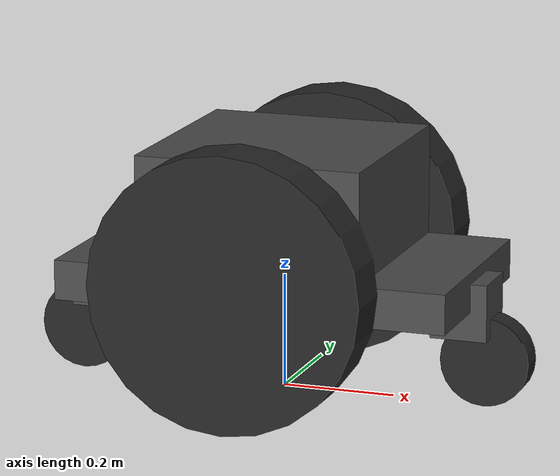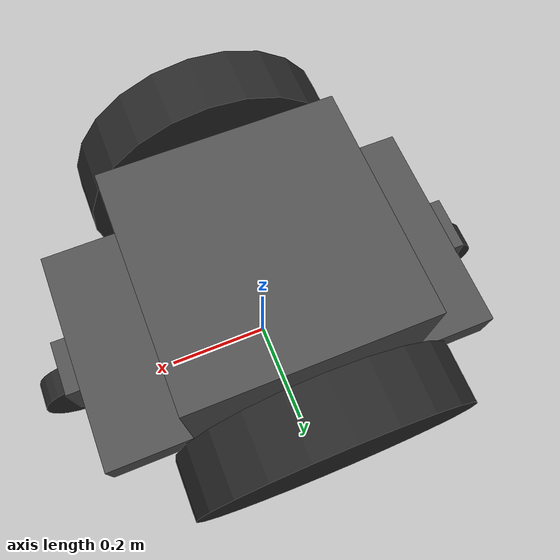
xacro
<?xml version="1.0"?>

<robot name="robot" xmlns:xacro="http://www.ros.org/wiki/xacro">

  <xacro:include filename="$(find iri_objects_description)/urdf/materials.xacro" />
  <xacro:include filename="$(find iri_objects_description)/urdf/diff_platform/include/platform.xacro" />

  <xacro:diff_platform name="robot"/>

</robot>

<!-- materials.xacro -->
<root xmlns:xacro="http://ros.org/wiki/xacro">
  <material name="black">
    <color rgba="0.15 0.15 0.15 1.0"/>
  </material>

  <material name="blue">
    <color rgba="0.17 0.3 0.56 1.0"/>
  </material>

  <material name="orange">
    <color rgba="0.93 0.44 0.01 1.0"/>
  </material>

  <material name="green">
    <color rgba="0.0 0.8 0.0 1.0"/>
  </material>

  <material name="grey">
    <color rgba="0.3 0.3 0.3 1.0"/>
  </material>

  <material name="grey2">
    <color rgba="0.7 0.7 0.7 1.0"/>
  </material>

  <material name="grey3">
    <color rgba="0.9 0.9 0.9 1.0"/>
  </material>

  <material name="red">
    <color rgba="0.8 0.0 0.0 1.0"/>
  </material>

  <material name="white">
    <color rgba="0.9 0.9 0.9 1.0"/>
  </material>
</root>

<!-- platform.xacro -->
<root xmlns:xacro="http://www.ros.org/wiki/xacro">

  <xacro:include filename="$(find iri_objects_description)/urdf/diff_platform/include/wheel.xacro" />
  <xacro:include filename="$(find iri_objects_description)/urdf/diff_platform/include/caster.xacro" />

  <xacro:macro name="diff_platform" params="name">
    <link name="base_footprint">
      <inertial>
        <mass value="1" />
        <origin xyz="0.0 0 0.0" />
        <inertia
          ixx="0.001" ixy="0.0" ixz="0.0"
          iyy="0.001" iyz="0.0"
          izz="0.001" />
      </inertial>
    </link>

    <link name="base_link">
      <visual>
        <origin xyz="0 0 0.1" rpy="0 0 0"/>
        <geometry>
          <box size="0.4 0.4 0.2"/>
        </geometry>
        <material name="grey"/>
      </visual>
      <inertial>
        <mass value="80" />
        <origin xyz="0 0 0.3" />
        <inertia
          ixx="24.0" ixy="0.0" ixz="0.0"
          iyy="24.0" iyz="0.0"
          izz="8.0" />
      </inertial>
    </link>

    <joint name="base_footprint2base_link" type="fixed">
      <parent link="base_footprint"/>
      <child link="base_link"/>
      <origin rpy="0 0 0" xyz="0 0 0.24"/>
      <axis xyz="0 0 1"/>
    </joint>

    <!-- left wheel -->
    <xacro:wheel prefix="left" parent="base_link" visual_angle="3.14">
      <origin xyz="0 0.2725 0.0" rpy="0 0 0" />
    </xacro:wheel>

    <!-- right wheel -->
    <xacro:wheel prefix="right" parent="base_link" visual_angle="0.0">
      <origin xyz="0 -0.2725 0.0" rpy="0 0 0" />
    </xacro:wheel>

    <!-- caster support -->
    <link name="caster_support">
      <inertial>
        <origin xyz="0 0 0" rpy="0 0 0"/>
        <mass value="1"/>
        <inertia
          ixx="0.001" ixy="0.0" ixz="0.0"
          iyy="0.001" iyz="0.0"
          izz="0.001"/>
      </inertial>
      <visual>
       <origin xyz="0 0 -0.035" rpy="0 0 0" />
       <geometry>
         <box size="0.7 0.4 0.07"/>
       </geometry>
       <material name="grey"/>
      </visual>
    </link>

    <joint name="base_link2caster_support" type="fixed">
      <parent link="base_link"/>
      <child link="caster_support"/>
      <origin rpy="0 0 0" xyz="0 0 0.005"/>
      <axis xyz="0 0 1"/>
    </joint>

    <!-- front caster set -->
    <xacro:caster prefix="front" parent="caster_support">
      <origin xyz="0.3292 0 -0.07" rpy="0 0 3.14159" />
    </xacro:caster>

    <!-- rear caster set -->
    <xacro:caster prefix="rear" parent="caster_support">
      <origin xyz="-0.3292 0 -0.07" rpy="0 0 0" />
    </xacro:caster>

    <gazebo>
      <plugin name="gazebo_ros_control" filename="libgazebo_ros_control.so">
        <robotNamespace>/${name}</robotNamespace>
        <controlPeriod>0.0078</controlPeriod>
      </plugin>
    </gazebo>

    <gazebo>
      <plugin name="differential_drive_controller" filename="libgazebo_ros_diff_drive.so">
        <rosDebugLevel>Debug</rosDebugLevel>
        <robotNamespace>${name}</robotNamespace>
        <publishTf>1</publishTf>
        <publishWheelTF>false</publishWheelTF>
        <publishWheelJointState>false</publishWheelJointState>
        <alwaysOn>true</alwaysOn>
        <updateRate>10</updateRate>
        <leftJoint>base_link_right_wheel_joint</leftJoint>
        <rightJoint>base_link_left_wheel_joint</rightJoint>
        <wheelSeparation>0.545</wheelSeparation>
        <wheelDiameter>0.48</wheelDiameter>
        <wheelTorque>100</wheelTorque>
        <wheelAcceleration>0.0</wheelAcceleration>
        <commandTopic>cmd_vel</commandTopic>
        <odometryTopic>odom</odometryTopic>
        <odometryFrame>/${name}/odom</odometryFrame>
        <odometrySource>world</odometrySource>
        <robotBaseFrame>/${name}/base_footprint</robotBaseFrame>
      </plugin>
    </gazebo>

    <gazebo reference="base_footprint">
      <material>Gazebo/Black</material>
    </gazebo>

    <gazebo reference="base_link">
      <material>Gazebo/Grey</material>
    </gazebo>

    <gazebo reference="caster_support">
      <material>Gazebo/Grey</material>
    </gazebo>

  </xacro:macro>

</root>

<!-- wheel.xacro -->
<root xmlns:xacro="http://ros.org/wiki/xacro">

  <xacro:property name="PI" value="3.1415926535897931" />

  <xacro:macro name="wheel" params="prefix parent *origin visual_angle">
    <joint name="${parent}_${prefix}_wheel_joint" type="continuous">
      <xacro:insert_block name="origin" />
      <axis xyz="0 1 0" />
      <anchor xyz="0 0 0" />
      <limit effort="100" velocity="100" />
      <parent link="${parent}" />
      <child link="${prefix}_wheel_link" />
    </joint>

    <link name="${prefix}_wheel_link">
      <inertial>
        <mass value="5" />
        <origin xyz=" 0 0 0 " />
        <inertia  ixx="0.076" ixy="0.0" ixz="0.0"
                  iyy="0.144" iyz="0.0"
                  izz="0.076" />
      </inertial>
      <visual>
        <origin xyz="0 0 0" rpy="${PI/2} 0 0" />
        <geometry>
          <cylinder length="0.1" radius="0.24"/>
        </geometry>
        <material name="black"/>
      </visual>
      <collision>
        <origin xyz="0 0 0" rpy="${PI/2} 0 0" />
        <geometry>
          <cylinder length="0.001" radius="0.24"/>
        </geometry>
      </collision>
    </link>

    <transmission name="${prefix}_wheel_trans">
      <type>transmission_interface/SimpleTransmission</type>
      <joint name="${parent}_${prefix}_wheel_joint">
        <hardwareInterface>EffortJointInterface</hardwareInterface>
      </joint>
      <actuator name="${prefix}_wheel_motor">
        <hardwareInterface>EffortJointInterface</hardwareInterface>
        <mechanicalReduction>1</mechanicalReduction>
      </actuator>
    </transmission>

    <gazebo reference="${parent}_${prefix}_wheel_joint">
      <dynamics damping="0.7" friction="0.2" />
    </gazebo>

    <gazebo reference="${prefix}_wheel_link">
      <gravity>true</gravity>
      <self_collide>false</self_collide>
      <mu1 value="10.0" />
      <mu2 value="10.0" />
      <kp  value="1000000.0" />
      <kd  value="1.0" />
      <material>Gazebo/DarkGrey</material>
    </gazebo>

  </xacro:macro>
</root>

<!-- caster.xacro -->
<root xmlns:xacro="http://ros.org/wiki/xacro">

  <xacro:property name="PI" value="3.1415926535897931" />

  <xacro:macro name="caster" params="prefix parent *origin">

    <link name="${prefix}_support">
      <inertial>
        <mass value="1"/>
        <origin xyz="0 0 0" />
        <inertia
          ixx="0.00375" ixy="0.0" ixz="0.0"
          iyy="0.00375" iyz="0.0"
          izz="0.00375" />
      </inertial>
      <visual>
        <origin xyz="0 0 0" rpy="0 0 0" />
        <geometry>
          <box size="0.1 0.1 0.1"/>
        </geometry>
        <material name="grey"/>
      </visual>
      <!--no collision-->
    </link>

    <joint name="${parent}_${prefix}_support_joint" type="continuous">
      <xacro:insert_block name="origin" />
      <parent link="${parent}" />
      <child link="${prefix}_support"/>
      <axis xyz="0 0 1" />
      <limit effort="0.1" velocity="100"/>
      <dynamics damping="10"/>
    </joint>

    <transmission name="${prefix}_yaw_trans">
      <type>transmission_interface/SimpleTransmission</type>
      <joint name="${parent}_${prefix}_support_joint">
        <hardwareInterface>EffortJointInterface</hardwareInterface>
      </joint>
      <actuator name="${prefix}_yaw_motor">
        <hardwareInterface>EffortJointInterface</hardwareInterface>
        <mechanicalReduction>1</mechanicalReduction>
      </actuator>
    </transmission>

    <link name="${prefix}_caster_wheel">
      <inertial>
        <mass value="2" />
        <origin xyz="0 0 0" rpy="0 0 0" />
        <inertia
          ixx="0.003" ixy="0.0" ixz="0.0"
          iyy="0.00581" iyz="0.0"
          izz="0.003" />
      </inertial>
      <visual>
        <origin xyz="0 0 0" rpy="${PI/2} 0 0" />
        <geometry>
          <cylinder length="0.05" radius="0.0782"/>
        </geometry>
        <material name="black"/>
      </visual>
      <collision>
        <origin xyz="0 0 0" rpy="${PI/2} 0 0" />
        <geometry>
          <cylinder length="0.001" radius="0.0782"/>
        </geometry>
      </collision>
    </link>

    <joint name="${prefix}_caster_wheel_joint" type="continuous">
      <origin xyz="-0.0397 0 -0.0918" rpy="0 0 0" />
      <parent link="${prefix}_support" />
      <child link="${prefix}_caster_wheel" />
      <axis xyz="0 1 0" />
      <limit effort="1" velocity="100"/>
      <dynamics damping="10"/>
    </joint>

    <transmission name="${prefix}_caster_wheel_trans">
      <type>transmission_interface/SimpleTransmission</type>
      <joint name="${prefix}_caster_wheel_joint">
        <hardwareInterface>EffortJointInterface</hardwareInterface>
      </joint>
      <actuator name="${prefix}_caster_wheel_motor">
        <hardwareInterface>EffortJointInterface</hardwareInterface>
        <mechanicalReduction>1</mechanicalReduction>
      </actuator>
    </transmission>

    <gazebo reference="${prefix}_support">
      <material>Gazebo/Grey</material>
      <gravity>true</gravity>
      <self_collide>false</self_collide>
      <mu1>1</mu1>
      <mu2>1</mu2>
      <kp  value="1000000.0" />
      <kd  value="1.0" />
    </gazebo>

    <gazebo reference="${parent}_${prefix}_support_joint">
      <implicitSpringDamper>true</implicitSpringDamper>
    </gazebo>

    <gazebo reference="${prefix}_caster_wheel">
      <material>Gazebo/Grey</material>
      <gravity>true</gravity>
      <self_collide>false</self_collide>
      <mu1>1</mu1>
      <mu2>1</mu2>
      <kp  value="1000000.0" />
      <kd  value="1.0" />
    </gazebo>

    <gazebo reference="${prefix}_caster_wheel_joint">
      <implicitSpringDamper>true</implicitSpringDamper>
    </gazebo>

  </xacro:macro>
</root>
